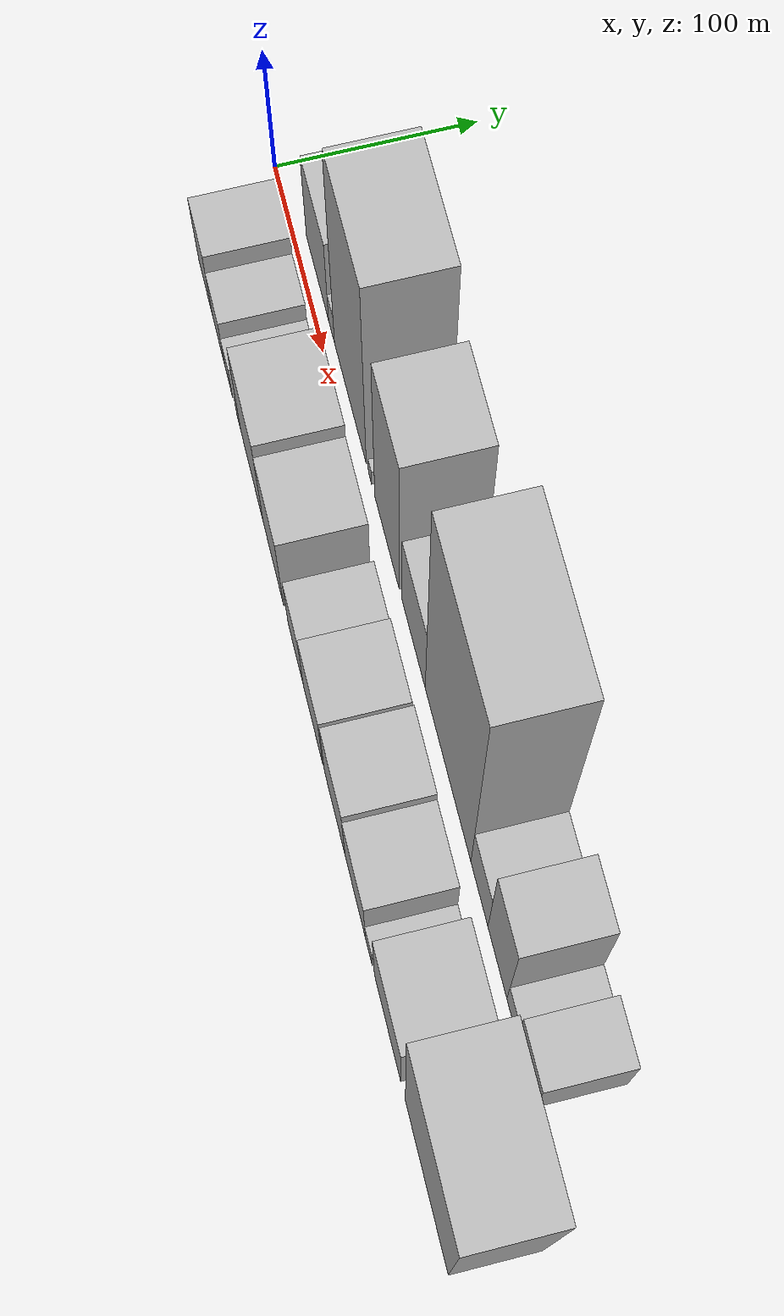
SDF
<sdf version="1.6">
 <world name="default">
  <scene>
   <sky><clouds><speed>12</speed></clouds></sky>
   <ambient>0.4 0.4 0.4 1</ambient>
   <background>0.7 0.7 0.7 1</background>
   <shadows>1</shadows>
  </scene>
  <gravity>0 0 -9.8066</gravity>
  <magnetic_field>6e-06 2.3e-05 -4.2e-05</magnetic_field>
  <physics default="0" name="default_physics" type="ode">
   <ode>
    <solver>
     <type>quick</type>
     <iters>10</iters>
     <sor>1.0</sor>
     <use_dynamic_moi_rescaling>0</use_dynamic_moi_rescaling>
    </solver>
    <constraints>
     <cfm>0</cfm>
     <erp>0.2</erp>
     <contact_max_correcting_vel>100</contact_max_correcting_vel>
     <contact_surface_layer>0.001</contact_surface_layer>
    </constraints>
   </ode>
   <max_step_size>0.004</max_step_size>
   <real_time_factor>1</real_time_factor>
   <real_time_update_rate>250</real_time_update_rate>
  </physics>
  <light name="sun" type="directional">
   <pose>0 0 10 0 0 0</pose>
   <diffuse>0.8 0.8 0.8 1</diffuse>
   <specular>0.2 0.2 0.2 1</specular>
   <attenuation>
    <range>1000</range>
    <constant>0.9</constant>
    <linear>0.01</linear>
    <quadratic>0.001</quadratic>
   </attenuation>
   <direction>-0.5 0.1 -0.9</direction>
  </light>
  <model name="building_1">
   <static>1</static>
   <pose>62.4932 26.0000 0 0.000000 0.000000 1.570796</pose>
   <link name="link">
    <pose>0 0 37.50 0 0 0</pose>
    <collision name="collision"><geometry><box><size>40.0000 44.9864 75.0000</size></box></geometry></collision>
    <visual name="visual">
     <cast_shadows>0</cast_shadows>
     <geometry><box><size>40.0000 44.9864 75.0000</size></box></geometry>
     <material>
      <script>
       <uri>model://HANNAS_wall/materials/scripts</uri>
       <uri>model://HANNAS_wall/materials/textures</uri>
       <name>vrc/HANNAS_wall</name>
      </script>
     </material>
    </visual>
   </link>
  </model>
  <model name="building_2">
   <static>1</static>
   <pose>90.9111 26.0000 0 0.000000 0.000000 1.570796</pose>
   <link name="link">
    <pose>0 0 13.50 0 0 0</pose>
    <collision name="collision"><geometry><box><size>40.0000 11.8492 27.0000</size></box></geometry></collision>
    <visual name="visual">
     <cast_shadows>0</cast_shadows>
     <geometry><box><size>40.0000 11.8492 27.0000</size></box></geometry>
     <material>
      <script>
       <uri>model://HANNAS_wall/materials/scripts</uri>
       <uri>model://HANNAS_wall/materials/textures</uri>
       <name>vrc/HANNAS_wall</name>
      </script>
     </material>
    </visual>
   </link>
  </model>
  <model name="building_3">
   <static>1</static>
   <pose>127.9426 26.0000 0 0.000000 0.000000 1.570796</pose>
   <link name="link">
    <pose>0 0 88.50 0 0 0</pose>
    <collision name="collision"><geometry><box><size>40.0000 62.2137 177.0000</size></box></geometry></collision>
    <visual name="visual">
     <cast_shadows>0</cast_shadows>
     <geometry><box><size>40.0000 62.2137 177.0000</size></box></geometry>
     <material>
      <script>
       <uri>model://HANNAS_wall/materials/scripts</uri>
       <uri>model://HANNAS_wall/materials/textures</uri>
       <name>vrc/HANNAS_wall</name>
      </script>
     </material>
    </visual>
   </link>
  </model>
  <model name="building_4">
   <static>1</static>
   <pose>166.2386 26.0000 0 0.000000 0.000000 1.570796</pose>
   <link name="link">
    <pose>0 0 7.50 0 0 0</pose>
    <collision name="collision"><geometry><box><size>40.0000 6.3785 15.0000</size></box></geometry></collision>
    <visual name="visual">
     <cast_shadows>0</cast_shadows>
     <geometry><box><size>40.0000 6.3785 15.0000</size></box></geometry>
     <material>
      <script>
       <uri>model://HANNAS_wall/materials/scripts</uri>
       <uri>model://HANNAS_wall/materials/textures</uri>
       <name>vrc/HANNAS_wall</name>
      </script>
     </material>
    </visual>
   </link>
  </model>
  <model name="building_5">
   <static>1</static>
   <pose>198.3832 26.0000 0 0.000000 0.000000 1.570796</pose>
   <link name="link">
    <pose>0 0 72.00 0 0 0</pose>
    <collision name="collision"><geometry><box><size>40.0000 45.9106 144.0000</size></box></geometry></collision>
    <visual name="visual">
     <cast_shadows>0</cast_shadows>
     <geometry><box><size>40.0000 45.9106 144.0000</size></box></geometry>
     <material>
      <script>
       <uri>model://HANNAS_wall/materials/scripts</uri>
       <uri>model://HANNAS_wall/materials/textures</uri>
       <name>vrc/HANNAS_wall</name>
      </script>
     </material>
    </visual>
   </link>
  </model>
  <model name="building_6">
   <static>1</static>
   <pose>247.6687 26.0000 0 0.000000 0.000000 1.570796</pose>
   <link name="link">
    <pose>0 0 37.50 0 0 0</pose>
    <collision name="collision"><geometry><box><size>40.0000 42.6604 75.0000</size></box></geometry></collision>
    <visual name="visual">
     <cast_shadows>0</cast_shadows>
     <geometry><box><size>40.0000 42.6604 75.0000</size></box></geometry>
     <material>
      <script>
       <uri>model://HANNAS_wall/materials/scripts</uri>
       <uri>model://HANNAS_wall/materials/textures</uri>
       <name>vrc/HANNAS_wall</name>
      </script>
     </material>
    </visual>
   </link>
  </model>
  <model name="building_7">
   <static>1</static>
   <pose>309.2730 26.0000 0 0.000000 0.000000 1.570796</pose>
   <link name="link">
    <pose>0 0 109.50 0 0 0</pose>
    <collision name="collision"><geometry><box><size>40.0000 80.5481 219.0000</size></box></geometry></collision>
    <visual name="visual">
     <cast_shadows>0</cast_shadows>
     <geometry><box><size>40.0000 80.5481 219.0000</size></box></geometry>
     <material>
      <script>
       <uri>model://HANNAS_wall/materials/scripts</uri>
       <uri>model://HANNAS_wall/materials/textures</uri>
       <name>vrc/HANNAS_wall</name>
      </script>
     </material>
    </visual>
   </link>
  </model>
  <model name="building_8">
   <static>1</static>
   <pose>364.0394 26.0000 0 0.000000 0.000000 1.570796</pose>
   <link name="link">
    <pose>0 0 27.00 0 0 0</pose>
    <collision name="collision"><geometry><box><size>40.0000 28.9847 54.0000</size></box></geometry></collision>
    <visual name="visual">
     <cast_shadows>0</cast_shadows>
     <geometry><box><size>40.0000 28.9847 54.0000</size></box></geometry>
     <material>
      <script>
       <uri>model://HANNAS_wall/materials/scripts</uri>
       <uri>model://HANNAS_wall/materials/textures</uri>
       <name>vrc/HANNAS_wall</name>
      </script>
     </material>
    </visual>
   </link>
  </model>
  <model name="building_9">
   <static>1</static>
   <pose>394.4013 26.0000 0 0.000000 0.000000 1.570796</pose>
   <link name="link">
    <pose>0 0 51.00 0 0 0</pose>
    <collision name="collision"><geometry><box><size>40.0000 31.7392 102.0000</size></box></geometry></collision>
    <visual name="visual">
     <cast_shadows>0</cast_shadows>
     <geometry><box><size>40.0000 31.7392 102.0000</size></box></geometry>
     <material>
      <script>
       <uri>model://HANNAS_wall/materials/scripts</uri>
       <uri>model://HANNAS_wall/materials/textures</uri>
       <name>vrc/HANNAS_wall</name>
      </script>
     </material>
    </visual>
   </link>
  </model>
  <model name="building_10">
   <static>1</static>
   <pose>418.6257 26.0000 0 0.000000 0.000000 1.570796</pose>
   <link name="link">
    <pose>0 0 15.00 0 0 0</pose>
    <collision name="collision"><geometry><box><size>40.0000 16.7096 30.0000</size></box></geometry></collision>
    <visual name="visual">
     <cast_shadows>0</cast_shadows>
     <geometry><box><size>40.0000 16.7096 30.0000</size></box></geometry>
     <material>
      <script>
       <uri>model://HANNAS_wall/materials/scripts</uri>
       <uri>model://HANNAS_wall/materials/textures</uri>
       <name>vrc/HANNAS_wall</name>
      </script>
     </material>
    </visual>
   </link>
  </model>
  <model name="building_11">
   <static>1</static>
   <pose>441.9479 26.0000 0 0.000000 0.000000 1.570796</pose>
   <link name="link">
    <pose>0 0 27.00 0 0 0</pose>
    <collision name="collision"><geometry><box><size>40.0000 29.9348 54.0000</size></box></geometry></collision>
    <visual name="visual">
     <cast_shadows>0</cast_shadows>
     <geometry><box><size>40.0000 29.9348 54.0000</size></box></geometry>
     <material>
      <script>
       <uri>model://HANNAS_wall/materials/scripts</uri>
       <uri>model://HANNAS_wall/materials/textures</uri>
       <name>vrc/HANNAS_wall</name>
      </script>
     </material>
    </visual>
   </link>
  </model>
  <model name="building_12">
   <static>1</static>
   <pose>55.1444 -26.0000 0 0.000000 0.000000 1.570796</pose>
   <link name="link">
    <pose>0 0 30.00 0 0 0</pose>
    <collision name="collision"><geometry><box><size>40.0000 30.2888 60.0000</size></box></geometry></collision>
    <visual name="visual">
     <cast_shadows>0</cast_shadows>
     <geometry><box><size>40.0000 30.2888 60.0000</size></box></geometry>
     <material>
      <script>
       <uri>model://HANNAS_wall/materials/scripts</uri>
       <uri>model://HANNAS_wall/materials/textures</uri>
       <name>vrc/HANNAS_wall</name>
      </script>
     </material>
    </visual>
   </link>
  </model>
  <model name="building_13">
   <static>1</static>
   <pose>83.2810 -26.0000 0 0.000000 0.000000 1.570796</pose>
   <link name="link">
    <pose>0 0 22.50 0 0 0</pose>
    <collision name="collision"><geometry><box><size>40.0000 25.9846 45.0000</size></box></geometry></collision>
    <visual name="visual">
     <cast_shadows>0</cast_shadows>
     <geometry><box><size>40.0000 25.9846 45.0000</size></box></geometry>
     <material>
      <script>
       <uri>model://HANNAS_wall/materials/scripts</uri>
       <uri>model://HANNAS_wall/materials/textures</uri>
       <name>vrc/HANNAS_wall</name>
      </script>
     </material>
    </visual>
   </link>
  </model>
  <model name="building_14">
   <static>1</static>
   <pose>104.2739 -26.0000 0 0.000000 0.000000 1.570796</pose>
   <link name="link">
    <pose>0 0 15.00 0 0 0</pose>
    <collision name="collision"><geometry><box><size>40.0000 16.0011 30.0000</size></box></geometry></collision>
    <visual name="visual">
     <cast_shadows>0</cast_shadows>
     <geometry><box><size>40.0000 16.0011 30.0000</size></box></geometry>
     <material>
      <script>
       <uri>model://HANNAS_wall/materials/scripts</uri>
       <uri>model://HANNAS_wall/materials/textures</uri>
       <name>vrc/HANNAS_wall</name>
      </script>
     </material>
    </visual>
   </link>
  </model>
  <model name="building_15">
   <static>1</static>
   <pose>125.4945 -26.0000 0 0.000000 0.000000 1.570796</pose>
   <link name="link">
    <pose>0 0 10.50 0 0 0</pose>
    <collision name="collision"><geometry><box><size>40.0000 8.4401 21.0000</size></box></geometry></collision>
    <visual name="visual">
     <cast_shadows>0</cast_shadows>
     <geometry><box><size>40.0000 8.4401 21.0000</size></box></geometry>
     <material>
      <script>
       <uri>model://HANNAS_wall/materials/scripts</uri>
       <uri>model://HANNAS_wall/materials/textures</uri>
       <name>vrc/HANNAS_wall</name>
      </script>
     </material>
    </visual>
   </link>
  </model>
  <model name="building_16">
   <static>1</static>
   <pose>152.8273 -26.0000 0 0.000000 0.000000 1.570796</pose>
   <link name="link">
    <pose>0 0 45.00 0 0 0</pose>
    <collision name="collision"><geometry><box><size>40.0000 46.2256 90.0000</size></box></geometry></collision>
    <visual name="visual">
     <cast_shadows>0</cast_shadows>
     <geometry><box><size>40.0000 46.2256 90.0000</size></box></geometry>
     <material>
      <script>
       <uri>model://HANNAS_wall/materials/scripts</uri>
       <uri>model://HANNAS_wall/materials/textures</uri>
       <name>vrc/HANNAS_wall</name>
      </script>
     </material>
    </visual>
   </link>
  </model>
  <model name="building_17">
   <static>1</static>
   <pose>196.2316 -26.0000 0 0.000000 0.000000 1.570796</pose>
   <link name="link">
    <pose>0 0 39.00 0 0 0</pose>
    <collision name="collision"><geometry><box><size>40.0000 40.5830 78.0000</size></box></geometry></collision>
    <visual name="visual">
     <cast_shadows>0</cast_shadows>
     <geometry><box><size>40.0000 40.5830 78.0000</size></box></geometry>
     <material>
      <script>
       <uri>model://HANNAS_wall/materials/scripts</uri>
       <uri>model://HANNAS_wall/materials/textures</uri>
       <name>vrc/HANNAS_wall</name>
      </script>
     </material>
    </visual>
   </link>
  </model>
  <model name="building_18">
   <static>1</static>
   <pose>240.1695 -26.0000 0 0.000000 0.000000 1.570796</pose>
   <link name="link">
    <pose>0 0 28.50 0 0 0</pose>
    <collision name="collision"><geometry><box><size>40.0000 29.2928 57.0000</size></box></geometry></collision>
    <visual name="visual">
     <cast_shadows>0</cast_shadows>
     <geometry><box><size>40.0000 29.2928 57.0000</size></box></geometry>
     <material>
      <script>
       <uri>model://HANNAS_wall/materials/scripts</uri>
       <uri>model://HANNAS_wall/materials/textures</uri>
       <name>vrc/HANNAS_wall</name>
      </script>
     </material>
    </visual>
   </link>
  </model>
  <model name="building_19">
   <static>1</static>
   <pose>273.5339 -26.0000 0 0.000000 0.000000 1.570796</pose>
   <link name="link">
    <pose>0 0 33.00 0 0 0</pose>
    <collision name="collision"><geometry><box><size>40.0000 37.4360 66.0000</size></box></geometry></collision>
    <visual name="visual">
     <cast_shadows>0</cast_shadows>
     <geometry><box><size>40.0000 37.4360 66.0000</size></box></geometry>
     <material>
      <script>
       <uri>model://HANNAS_wall/materials/scripts</uri>
       <uri>model://HANNAS_wall/materials/textures</uri>
       <name>vrc/HANNAS_wall</name>
      </script>
     </material>
    </visual>
   </link>
  </model>
  <model name="building_20">
   <static>1</static>
   <pose>314.4826 -26.0000 0 0.000000 0.000000 1.570796</pose>
   <link name="link">
    <pose>0 0 36.00 0 0 0</pose>
    <collision name="collision"><geometry><box><size>40.0000 38.4614 72.0000</size></box></geometry></collision>
    <visual name="visual">
     <cast_shadows>0</cast_shadows>
     <geometry><box><size>40.0000 38.4614 72.0000</size></box></geometry>
     <material>
      <script>
       <uri>model://HANNAS_wall/materials/scripts</uri>
       <uri>model://HANNAS_wall/materials/textures</uri>
       <name>vrc/HANNAS_wall</name>
      </script>
     </material>
    </visual>
   </link>
  </model>
  <model name="building_21">
   <static>1</static>
   <pose>352.2893 -26.0000 0 0.000000 0.000000 1.570796</pose>
   <link name="link">
    <pose>0 0 31.50 0 0 0</pose>
    <collision name="collision"><geometry><box><size>40.0000 37.1519 63.0000</size></box></geometry></collision>
    <visual name="visual">
     <cast_shadows>0</cast_shadows>
     <geometry><box><size>40.0000 37.1519 63.0000</size></box></geometry>
     <material>
      <script>
       <uri>model://HANNAS_wall/materials/scripts</uri>
       <uri>model://HANNAS_wall/materials/textures</uri>
       <name>vrc/HANNAS_wall</name>
      </script>
     </material>
    </visual>
   </link>
  </model>
  <model name="building_22">
   <static>1</static>
   <pose>376.8131 -26.0000 0 0.000000 0.000000 1.570796</pose>
   <link name="link">
    <pose>0 0 13.50 0 0 0</pose>
    <collision name="collision"><geometry><box><size>40.0000 11.8957 27.0000</size></box></geometry></collision>
    <visual name="visual">
     <cast_shadows>0</cast_shadows>
     <geometry><box><size>40.0000 11.8957 27.0000</size></box></geometry>
     <material>
      <script>
       <uri>model://HANNAS_wall/materials/scripts</uri>
       <uri>model://HANNAS_wall/materials/textures</uri>
       <name>vrc/HANNAS_wall</name>
      </script>
     </material>
    </visual>
   </link>
  </model>
  <model name="building_23">
   <static>1</static>
   <pose>409.8692 -26.0000 0 0.000000 0.000000 1.570796</pose>
   <link name="link">
    <pose>0 0 40.50 0 0 0</pose>
    <collision name="collision"><geometry><box><size>40.0000 46.2166 81.0000</size></box></geometry></collision>
    <visual name="visual">
     <cast_shadows>0</cast_shadows>
     <geometry><box><size>40.0000 46.2166 81.0000</size></box></geometry>
     <material>
      <script>
       <uri>model://HANNAS_wall/materials/scripts</uri>
       <uri>model://HANNAS_wall/materials/textures</uri>
       <name>vrc/HANNAS_wall</name>
      </script>
     </material>
    </visual>
   </link>
  </model>
  <model name="building_24">
   <static>1</static>
   <pose>477.1996 -26.0000 0 0.000000 0.000000 1.570796</pose>
   <link name="link">
    <pose>0 0 91.50 0 0 0</pose>
    <collision name="collision"><geometry><box><size>40.0000 72.4443 183.0000</size></box></geometry></collision>
    <visual name="visual">
     <cast_shadows>0</cast_shadows>
     <geometry><box><size>40.0000 72.4443 183.0000</size></box></geometry>
     <material>
      <script>
       <uri>model://HANNAS_wall/materials/scripts</uri>
       <uri>model://HANNAS_wall/materials/textures</uri>
       <name>vrc/HANNAS_wall</name>
      </script>
     </material>
    </visual>
   </link>
  </model>
 </world>
</sdf>
